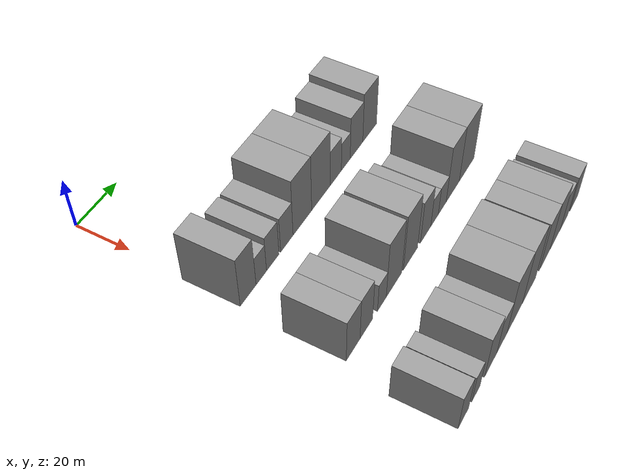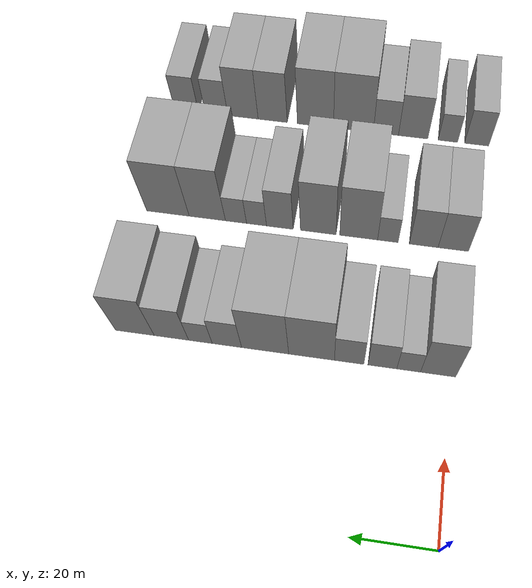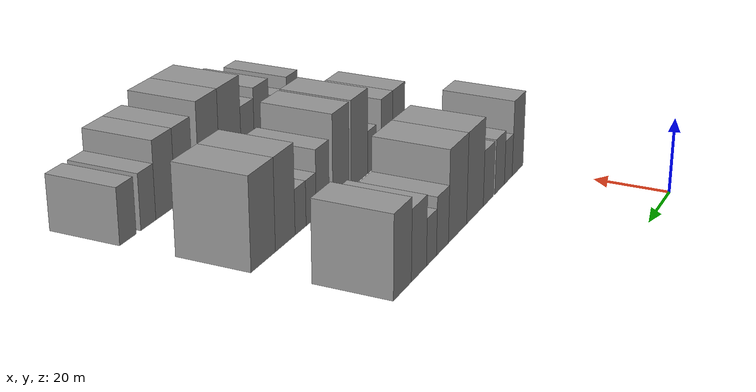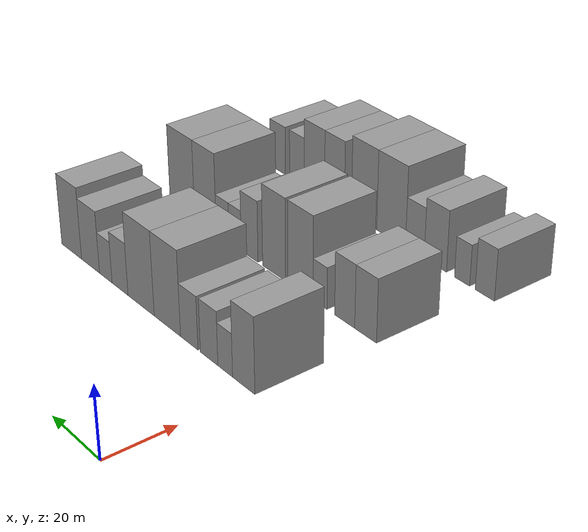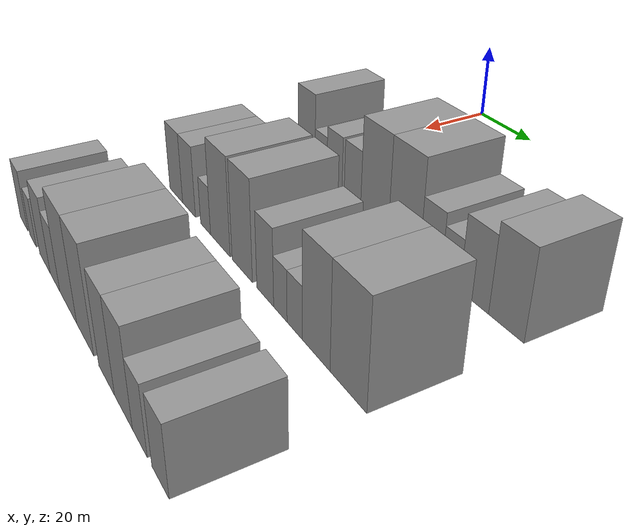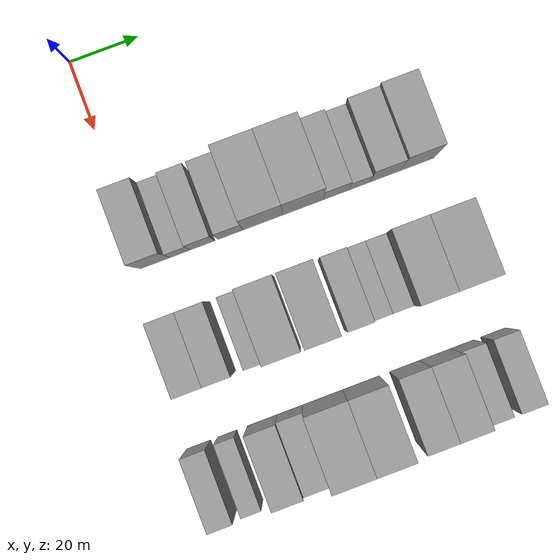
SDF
<sdf version="1.6">
 <world name="default">
  <model name="building_42">
   <static>1</static>
   <pose>50.0000 2.9636 0 0.000000 0.000000 0.000000</pose>
   <link name="link">
    <pose>0 0 10.50 0 0 0</pose>
    <collision name="collision"><geometry><box><size>20.0000 8.5834 21.0000</size></box></geometry></collision>
    <visual name="visual">
     <cast_shadows>0</cast_shadows>
     <geometry><box><size>20.0000 8.5834 21.0000</size></box></geometry>
     <material>
      <script>
       <uri>model://grey_wall/materials/scripts</uri>
       <uri>model://grey_wall/materials/textures</uri>
       <name>vrc/grey_wall</name>
      </script>
     </material>
    </visual>
   </link>
  </model>
  <model name="building_43">
   <static>1</static>
   <pose>50.0000 10.1613 0 0.000000 0.000000 0.000000</pose>
   <link name="link">
    <pose>0 0 6.00 0 0 0</pose>
    <collision name="collision"><geometry><box><size>20.0000 5.8121 12.0000</size></box></geometry></collision>
    <visual name="visual">
     <cast_shadows>0</cast_shadows>
     <geometry><box><size>20.0000 5.8121 12.0000</size></box></geometry>
     <material>
      <script>
       <uri>model://grey_wall/materials/scripts</uri>
       <uri>model://grey_wall/materials/textures</uri>
       <name>vrc/grey_wall</name>
      </script>
     </material>
    </visual>
   </link>
  </model>
  <model name="building_44">
   <static>1</static>
   <pose>50.0000 16.6124 0 0.000000 0.000000 0.000000</pose>
   <link name="link">
    <pose>0 0 7.50 0 0 0</pose>
    <collision name="collision"><geometry><box><size>20.0000 7.0900 15.0000</size></box></geometry></collision>
    <visual name="visual">
     <cast_shadows>0</cast_shadows>
     <geometry><box><size>20.0000 7.0900 15.0000</size></box></geometry>
     <material>
      <script>
       <uri>model://grey_wall/materials/scripts</uri>
       <uri>model://grey_wall/materials/textures</uri>
       <name>vrc/grey_wall</name>
      </script>
     </material>
    </visual>
   </link>
  </model>
  <model name="building_45">
   <static>1</static>
   <pose>50.0000 24.7984 0 0.000000 0.000000 0.000000</pose>
   <link name="link">
    <pose>0 0 7.50 0 0 0</pose>
    <collision name="collision"><geometry><box><size>20.0000 7.2821 15.0000</size></box></geometry></collision>
    <visual name="visual">
     <cast_shadows>0</cast_shadows>
     <geometry><box><size>20.0000 7.2821 15.0000</size></box></geometry>
     <material>
      <script>
       <uri>model://grey_wall/materials/scripts</uri>
       <uri>model://grey_wall/materials/textures</uri>
       <name>vrc/grey_wall</name>
      </script>
     </material>
    </visual>
   </link>
  </model>
  <model name="building_46">
   <static>1</static>
   <pose>50.0000 34.1373 0 0.000000 0.000000 0.000000</pose>
   <link name="link">
    <pose>0 0 12.00 0 0 0</pose>
    <collision name="collision"><geometry><box><size>20.0000 11.3957 24.0000</size></box></geometry></collision>
    <visual name="visual">
     <cast_shadows>0</cast_shadows>
     <geometry><box><size>20.0000 11.3957 24.0000</size></box></geometry>
     <material>
      <script>
       <uri>model://grey_wall/materials/scripts</uri>
       <uri>model://grey_wall/materials/textures</uri>
       <name>vrc/grey_wall</name>
      </script>
     </material>
    </visual>
   </link>
  </model>
  <model name="building_47">
   <static>1</static>
   <pose>50.0000 45.7500 0 0.000000 0.000000 0.000000</pose>
   <link name="link">
    <pose>0 0 12.00 0 0 0</pose>
    <collision name="collision"><geometry><box><size>20.0000 11.8298 24.0000</size></box></geometry></collision>
    <visual name="visual">
     <cast_shadows>0</cast_shadows>
     <geometry><box><size>20.0000 11.8298 24.0000</size></box></geometry>
     <material>
      <script>
       <uri>model://grey_wall/materials/scripts</uri>
       <uri>model://grey_wall/materials/textures</uri>
       <name>vrc/grey_wall</name>
      </script>
     </material>
    </visual>
   </link>
  </model>
  <model name="building_48">
   <static>1</static>
   <pose>50.0000 55.3839 0 0.000000 0.000000 0.000000</pose>
   <link name="link">
    <pose>0 0 7.50 0 0 0</pose>
    <collision name="collision"><geometry><box><size>20.0000 7.4379 15.0000</size></box></geometry></collision>
    <visual name="visual">
     <cast_shadows>0</cast_shadows>
     <geometry><box><size>20.0000 7.4379 15.0000</size></box></geometry>
     <material>
      <script>
       <uri>model://grey_wall/materials/scripts</uri>
       <uri>model://grey_wall/materials/textures</uri>
       <name>vrc/grey_wall</name>
      </script>
     </material>
    </visual>
   </link>
  </model>
  <model name="building_49">
   <static>1</static>
   <pose>50.0000 62.1015 0 0.000000 0.000000 0.000000</pose>
   <link name="link">
    <pose>0 0 6.00 0 0 0</pose>
    <collision name="collision"><geometry><box><size>20.0000 5.9973 12.0000</size></box></geometry></collision>
    <visual name="visual">
     <cast_shadows>0</cast_shadows>
     <geometry><box><size>20.0000 5.9973 12.0000</size></box></geometry>
     <material>
      <script>
       <uri>model://grey_wall/materials/scripts</uri>
       <uri>model://grey_wall/materials/textures</uri>
       <name>vrc/grey_wall</name>
      </script>
     </material>
    </visual>
   </link>
  </model>
  <model name="building_50">
   <static>1</static>
   <pose>50.0000 69.4958 0 0.000000 0.000000 0.000000</pose>
   <link name="link">
    <pose>0 0 9.00 0 0 0</pose>
    <collision name="collision"><geometry><box><size>20.0000 8.7914 18.0000</size></box></geometry></collision>
    <visual name="visual">
     <cast_shadows>0</cast_shadows>
     <geometry><box><size>20.0000 8.7914 18.0000</size></box></geometry>
     <material>
      <script>
       <uri>model://grey_wall/materials/scripts</uri>
       <uri>model://grey_wall/materials/textures</uri>
       <name>vrc/grey_wall</name>
      </script>
     </material>
    </visual>
   </link>
  </model>
  <model name="building_51">
   <static>1</static>
   <pose>50.0000 78.8702 0 0.000000 0.000000 0.000000</pose>
   <link name="link">
    <pose>0 0 10.50 0 0 0</pose>
    <collision name="collision"><geometry><box><size>20.0000 9.9574 21.0000</size></box></geometry></collision>
    <visual name="visual">
     <cast_shadows>0</cast_shadows>
     <geometry><box><size>20.0000 9.9574 21.0000</size></box></geometry>
     <material>
      <script>
       <uri>model://grey_wall/materials/scripts</uri>
       <uri>model://grey_wall/materials/textures</uri>
       <name>vrc/grey_wall</name>
      </script>
     </material>
    </visual>
   </link>
  </model>
  <model name="building_125">
   <static>1</static>
   <pose>85.0000 1.3332 0 0.000000 0.000000 0.000000</pose>
   <link name="link">
    <pose>0 0 9.00 0 0 0</pose>
    <collision name="collision"><geometry><box><size>20.0000 8.0716 18.0000</size></box></geometry></collision>
    <visual name="visual">
     <cast_shadows>0</cast_shadows>
     <geometry><box><size>20.0000 8.0716 18.0000</size></box></geometry>
     <material>
      <script>
       <uri>model://grey_wall/materials/scripts</uri>
       <uri>model://grey_wall/materials/textures</uri>
       <name>vrc/grey_wall</name>
      </script>
     </material>
    </visual>
   </link>
  </model>
  <model name="building_126">
   <static>1</static>
   <pose>85.0000 9.1990 0 0.000000 0.000000 0.000000</pose>
   <link name="link">
    <pose>0 0 9.00 0 0 0</pose>
    <collision name="collision"><geometry><box><size>20.0000 7.6599 18.0000</size></box></geometry></collision>
    <visual name="visual">
     <cast_shadows>0</cast_shadows>
     <geometry><box><size>20.0000 7.6599 18.0000</size></box></geometry>
     <material>
      <script>
       <uri>model://grey_wall/materials/scripts</uri>
       <uri>model://grey_wall/materials/textures</uri>
       <name>vrc/grey_wall</name>
      </script>
     </material>
    </visual>
   </link>
  </model>
  <model name="building_127">
   <static>1</static>
   <pose>85.0000 18.7792 0 0.000000 0.000000 0.000000</pose>
   <link name="link">
    <pose>0 0 6.00 0 0 0</pose>
    <collision name="collision"><geometry><box><size>20.0000 5.5005 12.0000</size></box></geometry></collision>
    <visual name="visual">
     <cast_shadows>0</cast_shadows>
     <geometry><box><size>20.0000 5.5005 12.0000</size></box></geometry>
     <material>
      <script>
       <uri>model://grey_wall/materials/scripts</uri>
       <uri>model://grey_wall/materials/textures</uri>
       <name>vrc/grey_wall</name>
      </script>
     </material>
    </visual>
   </link>
  </model>
  <model name="building_128">
   <static>1</static>
   <pose>85.0000 26.6254 0 0.000000 0.000000 0.000000</pose>
   <link name="link">
    <pose>0 0 12.00 0 0 0</pose>
    <collision name="collision"><geometry><box><size>20.0000 10.1918 24.0000</size></box></geometry></collision>
    <visual name="visual">
     <cast_shadows>0</cast_shadows>
     <geometry><box><size>20.0000 10.1918 24.0000</size></box></geometry>
     <material>
      <script>
       <uri>model://grey_wall/materials/scripts</uri>
       <uri>model://grey_wall/materials/textures</uri>
       <name>vrc/grey_wall</name>
      </script>
     </material>
    </visual>
   </link>
  </model>
  <model name="building_129">
   <static>1</static>
   <pose>85.0000 37.5442 0 0.000000 0.000000 0.000000</pose>
   <link name="link">
    <pose>0 0 12.00 0 0 0</pose>
    <collision name="collision"><geometry><box><size>20.0000 9.6459 24.0000</size></box></geometry></collision>
    <visual name="visual">
     <cast_shadows>0</cast_shadows>
     <geometry><box><size>20.0000 9.6459 24.0000</size></box></geometry>
     <material>
      <script>
       <uri>model://grey_wall/materials/scripts</uri>
       <uri>model://grey_wall/materials/textures</uri>
       <name>vrc/grey_wall</name>
      </script>
     </material>
    </visual>
   </link>
  </model>
  <model name="building_130">
   <static>1</static>
   <pose>85.0000 48.0102 0 0.000000 0.000000 0.000000</pose>
   <link name="link">
    <pose>0 0 9.00 0 0 0</pose>
    <collision name="collision"><geometry><box><size>20.0000 7.2861 18.0000</size></box></geometry></collision>
    <visual name="visual">
     <cast_shadows>0</cast_shadows>
     <geometry><box><size>20.0000 7.2861 18.0000</size></box></geometry>
     <material>
      <script>
       <uri>model://grey_wall/materials/scripts</uri>
       <uri>model://grey_wall/materials/textures</uri>
       <name>vrc/grey_wall</name>
      </script>
     </material>
    </visual>
   </link>
  </model>
  <model name="building_131">
   <static>1</static>
   <pose>85.0000 54.3924 0 0.000000 0.000000 0.000000</pose>
   <link name="link">
    <pose>0 0 6.00 0 0 0</pose>
    <collision name="collision"><geometry><box><size>20.0000 5.4784 12.0000</size></box></geometry></collision>
    <visual name="visual">
     <cast_shadows>0</cast_shadows>
     <geometry><box><size>20.0000 5.4784 12.0000</size></box></geometry>
     <material>
      <script>
       <uri>model://grey_wall/materials/scripts</uri>
       <uri>model://grey_wall/materials/textures</uri>
       <name>vrc/grey_wall</name>
      </script>
     </material>
    </visual>
   </link>
  </model>
  <model name="building_132">
   <static>1</static>
   <pose>85.0000 60.0368 0 0.000000 0.000000 0.000000</pose>
   <link name="link">
    <pose>0 0 6.00 0 0 0</pose>
    <collision name="collision"><geometry><box><size>20.0000 5.8105 12.0000</size></box></geometry></collision>
    <visual name="visual">
     <cast_shadows>0</cast_shadows>
     <geometry><box><size>20.0000 5.8105 12.0000</size></box></geometry>
     <material>
      <script>
       <uri>model://grey_wall/materials/scripts</uri>
       <uri>model://grey_wall/materials/textures</uri>
       <name>vrc/grey_wall</name>
      </script>
     </material>
    </visual>
   </link>
  </model>
  <model name="building_133">
   <static>1</static>
   <pose>85.0000 67.9635 0 0.000000 0.000000 0.000000</pose>
   <link name="link">
    <pose>0 0 12.00 0 0 0</pose>
    <collision name="collision"><geometry><box><size>20.0000 10.0428 24.0000</size></box></geometry></collision>
    <visual name="visual">
     <cast_shadows>0</cast_shadows>
     <geometry><box><size>20.0000 10.0428 24.0000</size></box></geometry>
     <material>
      <script>
       <uri>model://grey_wall/materials/scripts</uri>
       <uri>model://grey_wall/materials/textures</uri>
       <name>vrc/grey_wall</name>
      </script>
     </material>
    </visual>
   </link>
  </model>
  <model name="building_134">
   <static>1</static>
   <pose>85.0000 78.9041 0 0.000000 0.000000 0.000000</pose>
   <link name="link">
    <pose>0 0 12.00 0 0 0</pose>
    <collision name="collision"><geometry><box><size>20.0000 11.8384 24.0000</size></box></geometry></collision>
    <visual name="visual">
     <cast_shadows>0</cast_shadows>
     <geometry><box><size>20.0000 11.8384 24.0000</size></box></geometry>
     <material>
      <script>
       <uri>model://grey_wall/materials/scripts</uri>
       <uri>model://grey_wall/materials/textures</uri>
       <name>vrc/grey_wall</name>
      </script>
     </material>
    </visual>
   </link>
  </model>
  <model name="building_206">
   <static>1</static>
   <pose>120.0000 -3.2859 0 0.000000 0.000000 0.000000</pose>
   <link name="link">
    <pose>0 0 7.50 0 0 0</pose>
    <collision name="collision"><geometry><box><size>20.0000 6.8841 15.0000</size></box></geometry></collision>
    <visual name="visual">
     <cast_shadows>0</cast_shadows>
     <geometry><box><size>20.0000 6.8841 15.0000</size></box></geometry>
     <material>
      <script>
       <uri>model://grey_wall/materials/scripts</uri>
       <uri>model://grey_wall/materials/textures</uri>
       <name>vrc/grey_wall</name>
      </script>
     </material>
    </visual>
   </link>
  </model>
  <model name="building_207">
   <static>1</static>
   <pose>120.0000 4.9398 0 0.000000 0.000000 0.000000</pose>
   <link name="link">
    <pose>0 0 6.00 0 0 0</pose>
    <collision name="collision"><geometry><box><size>20.0000 5.5673 12.0000</size></box></geometry></collision>
    <visual name="visual">
     <cast_shadows>0</cast_shadows>
     <geometry><box><size>20.0000 5.5673 12.0000</size></box></geometry>
     <material>
      <script>
       <uri>model://grey_wall/materials/scripts</uri>
       <uri>model://grey_wall/materials/textures</uri>
       <name>vrc/grey_wall</name>
      </script>
     </material>
    </visual>
   </link>
  </model>
  <model name="building_208">
   <static>1</static>
   <pose>120.0000 14.9741 0 0.000000 0.000000 0.000000</pose>
   <link name="link">
    <pose>0 0 9.00 0 0 0</pose>
    <collision name="collision"><geometry><box><size>20.0000 8.5013 18.0000</size></box></geometry></collision>
    <visual name="visual">
     <cast_shadows>0</cast_shadows>
     <geometry><box><size>20.0000 8.5013 18.0000</size></box></geometry>
     <material>
      <script>
       <uri>model://grey_wall/materials/scripts</uri>
       <uri>model://grey_wall/materials/textures</uri>
       <name>vrc/grey_wall</name>
      </script>
     </material>
    </visual>
   </link>
  </model>
  <model name="building_209">
   <static>1</static>
   <pose>120.0000 22.8759 0 0.000000 0.000000 0.000000</pose>
   <link name="link">
    <pose>0 0 7.50 0 0 0</pose>
    <collision name="collision"><geometry><box><size>20.0000 7.3023 15.0000</size></box></geometry></collision>
    <visual name="visual">
     <cast_shadows>0</cast_shadows>
     <geometry><box><size>20.0000 7.3023 15.0000</size></box></geometry>
     <material>
      <script>
       <uri>model://grey_wall/materials/scripts</uri>
       <uri>model://grey_wall/materials/textures</uri>
       <name>vrc/grey_wall</name>
      </script>
     </material>
    </visual>
   </link>
  </model>
  <model name="building_210">
   <static>1</static>
   <pose>120.0000 32.3416 0 0.000000 0.000000 0.000000</pose>
   <link name="link">
    <pose>0 0 12.00 0 0 0</pose>
    <collision name="collision"><geometry><box><size>20.0000 11.6292 24.0000</size></box></geometry></collision>
    <visual name="visual">
     <cast_shadows>0</cast_shadows>
     <geometry><box><size>20.0000 11.6292 24.0000</size></box></geometry>
     <material>
      <script>
       <uri>model://grey_wall/materials/scripts</uri>
       <uri>model://grey_wall/materials/textures</uri>
       <name>vrc/grey_wall</name>
      </script>
     </material>
    </visual>
   </link>
  </model>
  <model name="building_211">
   <static>1</static>
   <pose>120.0000 43.4573 0 0.000000 0.000000 0.000000</pose>
   <link name="link">
    <pose>0 0 12.00 0 0 0</pose>
    <collision name="collision"><geometry><box><size>20.0000 10.6022 24.0000</size></box></geometry></collision>
    <visual name="visual">
     <cast_shadows>0</cast_shadows>
     <geometry><box><size>20.0000 10.6022 24.0000</size></box></geometry>
     <material>
      <script>
       <uri>model://grey_wall/materials/scripts</uri>
       <uri>model://grey_wall/materials/textures</uri>
       <name>vrc/grey_wall</name>
      </script>
     </material>
    </visual>
   </link>
  </model>
  <model name="building_212">
   <static>1</static>
   <pose>120.0000 56.0753 0 0.000000 0.000000 0.000000</pose>
   <link name="link">
    <pose>0 0 10.50 0 0 0</pose>
    <collision name="collision"><geometry><box><size>20.0000 8.6337 21.0000</size></box></geometry></collision>
    <visual name="visual">
     <cast_shadows>0</cast_shadows>
     <geometry><box><size>20.0000 8.6337 21.0000</size></box></geometry>
     <material>
      <script>
       <uri>model://grey_wall/materials/scripts</uri>
       <uri>model://grey_wall/materials/textures</uri>
       <name>vrc/grey_wall</name>
      </script>
     </material>
    </visual>
   </link>
  </model>
  <model name="building_213">
   <static>1</static>
   <pose>120.0000 64.9018 0 0.000000 0.000000 0.000000</pose>
   <link name="link">
    <pose>0 0 10.50 0 0 0</pose>
    <collision name="collision"><geometry><box><size>20.0000 9.0193 21.0000</size></box></geometry></collision>
    <visual name="visual">
     <cast_shadows>0</cast_shadows>
     <geometry><box><size>20.0000 9.0193 21.0000</size></box></geometry>
     <material>
      <script>
       <uri>model://grey_wall/materials/scripts</uri>
       <uri>model://grey_wall/materials/textures</uri>
       <name>vrc/grey_wall</name>
      </script>
     </material>
    </visual>
   </link>
  </model>
  <model name="building_214">
   <static>1</static>
   <pose>120.0000 72.8053 0 0.000000 0.000000 0.000000</pose>
   <link name="link">
    <pose>0 0 7.50 0 0 0</pose>
    <collision name="collision"><geometry><box><size>20.0000 6.7878 15.0000</size></box></geometry></collision>
    <visual name="visual">
     <cast_shadows>0</cast_shadows>
     <geometry><box><size>20.0000 6.7878 15.0000</size></box></geometry>
     <material>
      <script>
       <uri>model://grey_wall/materials/scripts</uri>
       <uri>model://grey_wall/materials/textures</uri>
       <name>vrc/grey_wall</name>
      </script>
     </material>
    </visual>
   </link>
  </model>
  <model name="building_215">
   <static>1</static>
   <pose>120.0000 81.7858 0 0.000000 0.000000 0.000000</pose>
   <link name="link">
    <pose>0 0 7.50 0 0 0</pose>
    <collision name="collision"><geometry><box><size>20.0000 7.1733 15.0000</size></box></geometry></collision>
    <visual name="visual">
     <cast_shadows>0</cast_shadows>
     <geometry><box><size>20.0000 7.1733 15.0000</size></box></geometry>
     <material>
      <script>
       <uri>model://grey_wall/materials/scripts</uri>
       <uri>model://grey_wall/materials/textures</uri>
       <name>vrc/grey_wall</name>
      </script>
     </material>
    </visual>
   </link>
  </model>
 </world>
</sdf>
